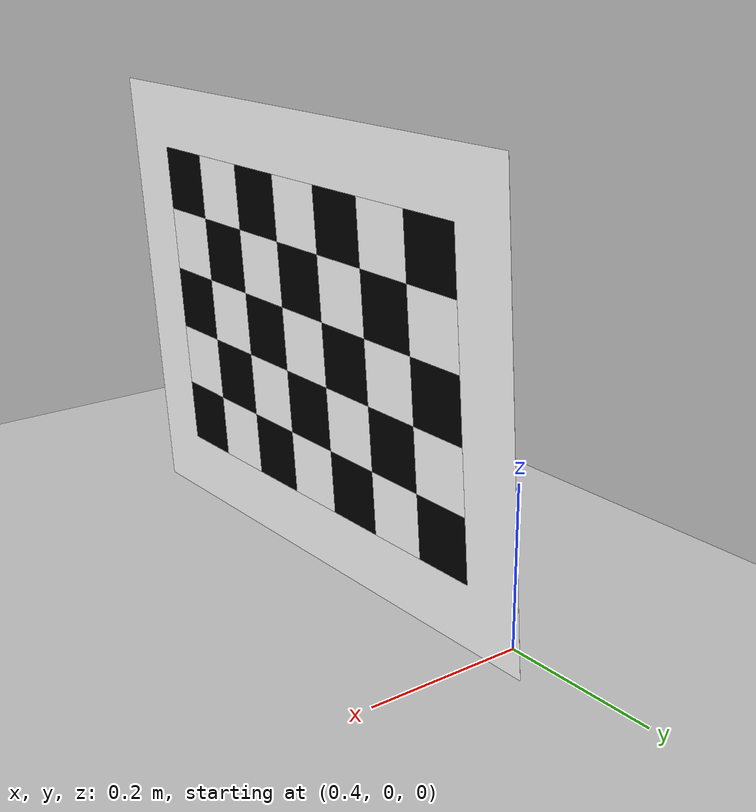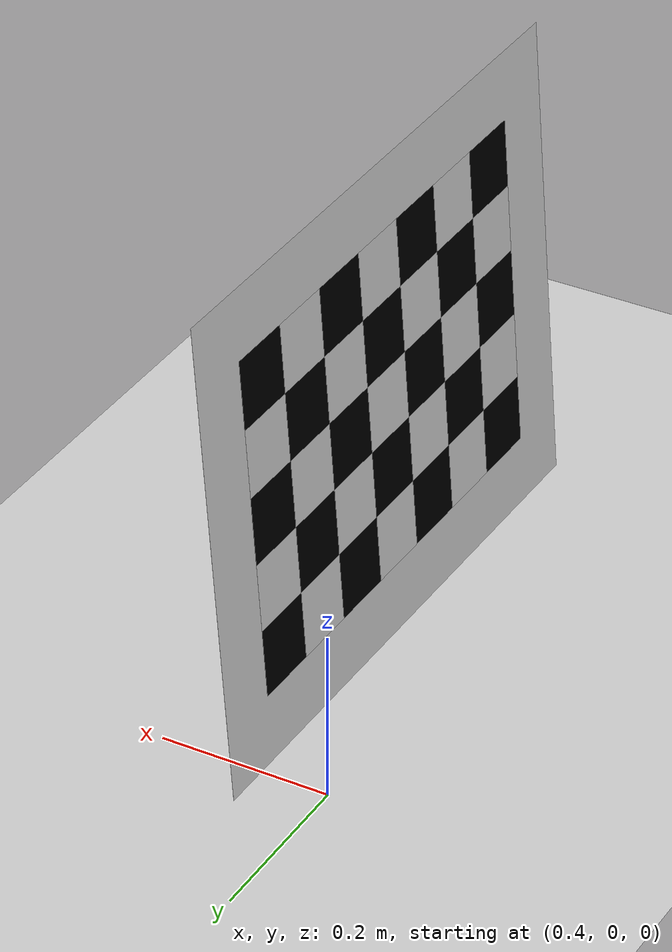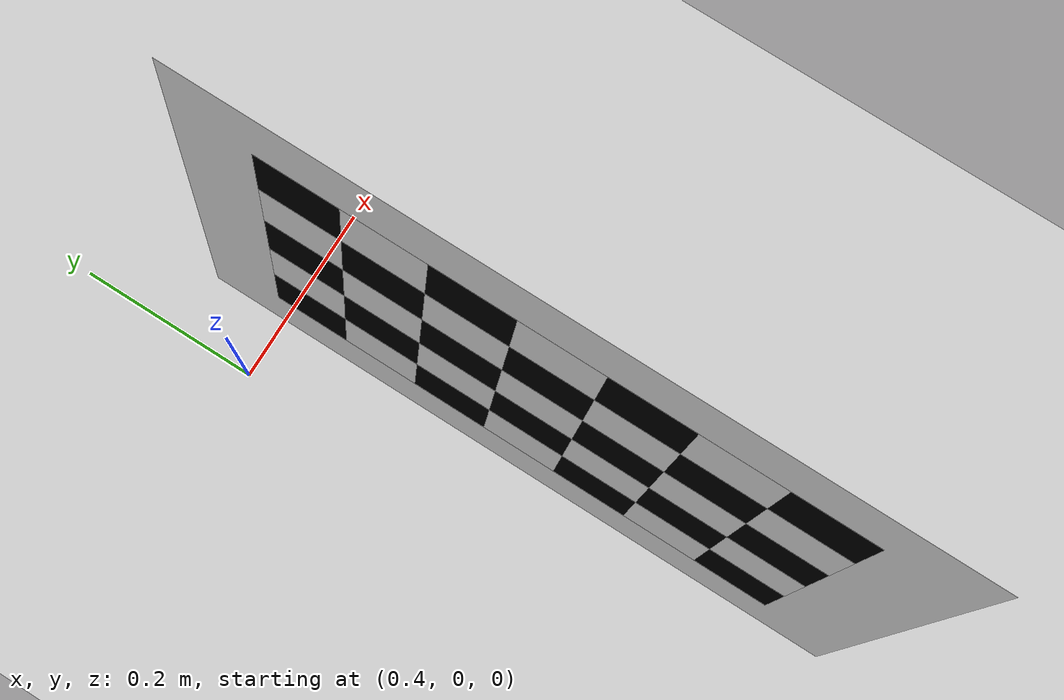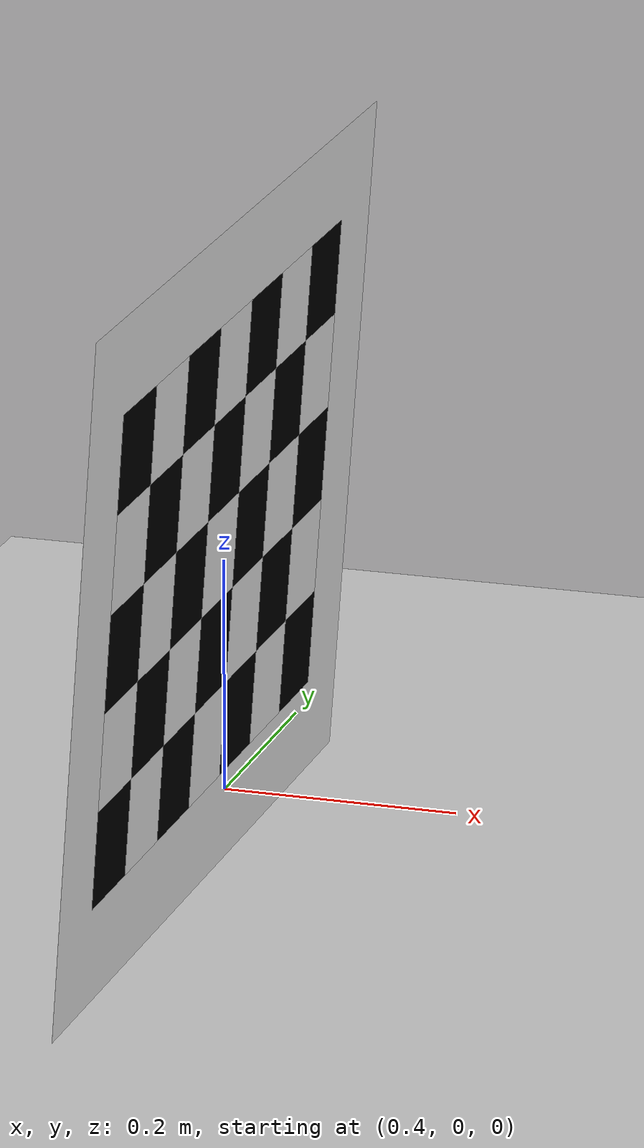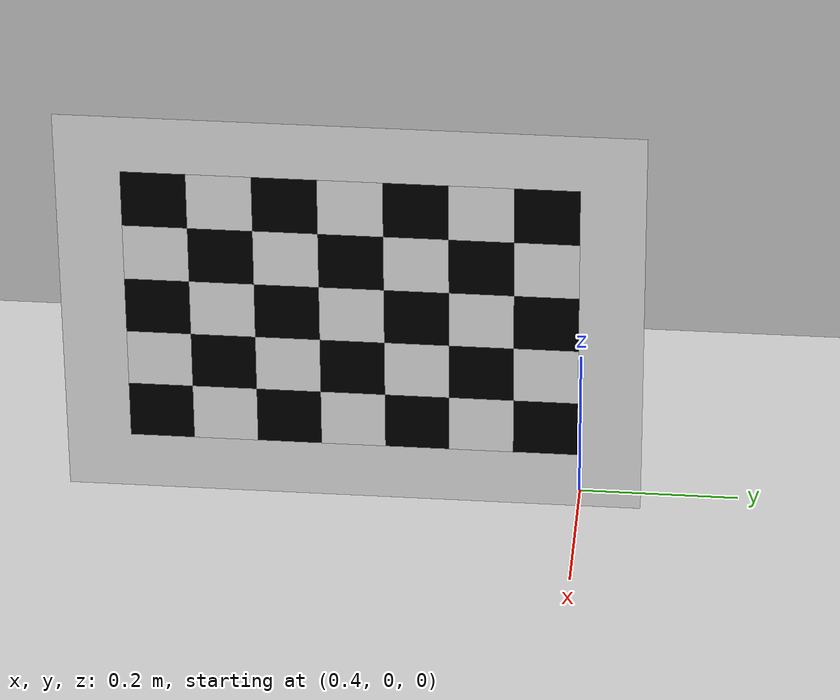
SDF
<?xml version="1.0" ?>
<sdf version="1.4">
  <!-- We use a custom world for the rrbot so that the camera angle is launched correctly -->

  <world name="checkerboard_world">
    <include>
      <uri>model://ground_plane</uri>
    </include>

    <!-- Global light source -->
    <include>
      <uri>model://sun</uri>
    </include>

    <include>
      <uri>model://checkerboard_5_7_0_08</uri>
      <pose>0.5 0 0.5 0.0 1.5 3.14</pose>
    </include>

  </world>
</sdf>

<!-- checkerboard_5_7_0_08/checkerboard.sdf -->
<sdf version="1.4">
  <model name="checkerboard_5_7_0_08">
  <static>true</static>
  <link name="checkerboard_5_7_0_08_body">
      <visual name="checker_0_0">
        <pose>0.04 0.04 0 0 0 0</pose>
        <geometry>
          <box>
            <size>0.08 0.08 0.0002</size>
          </box>
        </geometry>
        <material>
          <ambient>0 0 0 1</ambient>
          <diffuse>0 0 0 1</diffuse>
          <specular>0 0 0 1</specular>
          <emissive>0 0 0 1</emissive>
        </material>
      </visual>
      <visual name="checker_0_1">
        <pose>0.12 0.04 0 0 0 0</pose>
        <geometry>
          <box>
            <size>0.08 0.08 0.0002</size>
          </box>
        </geometry>
        <material>
          <ambient>1 1 1 1</ambient>
          <diffuse>1 1 1 1</diffuse>
          <specular>1 1 1 1</specular>
          <emissive>1 1 1 1</emissive>
        </material>
      </visual>
      <visual name="checker_0_2">
        <pose>0.2 0.04 0 0 0 0</pose>
        <geometry>
          <box>
            <size>0.08 0.08 0.0002</size>
          </box>
        </geometry>
        <material>
          <ambient>0 0 0 1</ambient>
          <diffuse>0 0 0 1</diffuse>
          <specular>0 0 0 1</specular>
          <emissive>0 0 0 1</emissive>
        </material>
      </visual>
      <visual name="checker_0_3">
        <pose>0.28 0.04 0 0 0 0</pose>
        <geometry>
          <box>
            <size>0.08 0.08 0.0002</size>
          </box>
        </geometry>
        <material>
          <ambient>1 1 1 1</ambient>
          <diffuse>1 1 1 1</diffuse>
          <specular>1 1 1 1</specular>
          <emissive>1 1 1 1</emissive>
        </material>
      </visual>
      <visual name="checker_0_4">
        <pose>0.36 0.04 0 0 0 0</pose>
        <geometry>
          <box>
            <size>0.08 0.08 0.0002</size>
          </box>
        </geometry>
        <material>
          <ambient>0 0 0 1</ambient>
          <diffuse>0 0 0 1</diffuse>
          <specular>0 0 0 1</specular>
          <emissive>0 0 0 1</emissive>
        </material>
      </visual>
      <visual name="checker_1_0">
        <pose>0.04 0.12 0 0 0 0</pose>
        <geometry>
          <box>
            <size>0.08 0.08 0.0002</size>
          </box>
        </geometry>
        <material>
          <ambient>1 1 1 1</ambient>
          <diffuse>1 1 1 1</diffuse>
          <specular>1 1 1 1</specular>
          <emissive>1 1 1 1</emissive>
        </material>
      </visual>
      <visual name="checker_1_1">
        <pose>0.12 0.12 0 0 0 0</pose>
        <geometry>
          <box>
            <size>0.08 0.08 0.0002</size>
          </box>
        </geometry>
        <material>
          <ambient>0 0 0 1</ambient>
          <diffuse>0 0 0 1</diffuse>
          <specular>0 0 0 1</specular>
          <emissive>0 0 0 1</emissive>
        </material>
      </visual>
      <visual name="checker_1_2">
        <pose>0.2 0.12 0 0 0 0</pose>
        <geometry>
          <box>
            <size>0.08 0.08 0.0002</size>
          </box>
        </geometry>
        <material>
          <ambient>1 1 1 1</ambient>
          <diffuse>1 1 1 1</diffuse>
          <specular>1 1 1 1</specular>
          <emissive>1 1 1 1</emissive>
        </material>
      </visual>
      <visual name="checker_1_3">
        <pose>0.28 0.12 0 0 0 0</pose>
        <geometry>
          <box>
            <size>0.08 0.08 0.0002</size>
          </box>
        </geometry>
        <material>
          <ambient>0 0 0 1</ambient>
          <diffuse>0 0 0 1</diffuse>
          <specular>0 0 0 1</specular>
          <emissive>0 0 0 1</emissive>
        </material>
      </visual>
      <visual name="checker_1_4">
        <pose>0.36 0.12 0 0 0 0</pose>
        <geometry>
          <box>
            <size>0.08 0.08 0.0002</size>
          </box>
        </geometry>
        <material>
          <ambient>1 1 1 1</ambient>
          <diffuse>1 1 1 1</diffuse>
          <specular>1 1 1 1</specular>
          <emissive>1 1 1 1</emissive>
        </material>
      </visual>
      <visual name="checker_2_0">
        <pose>0.04 0.2 0 0 0 0</pose>
        <geometry>
          <box>
            <size>0.08 0.08 0.0002</size>
          </box>
        </geometry>
        <material>
          <ambient>0 0 0 1</ambient>
          <diffuse>0 0 0 1</diffuse>
          <specular>0 0 0 1</specular>
          <emissive>0 0 0 1</emissive>
        </material>
      </visual>
      <visual name="checker_2_1">
        <pose>0.12 0.2 0 0 0 0</pose>
        <geometry>
          <box>
            <size>0.08 0.08 0.0002</size>
          </box>
        </geometry>
        <material>
          <ambient>1 1 1 1</ambient>
          <diffuse>1 1 1 1</diffuse>
          <specular>1 1 1 1</specular>
          <emissive>1 1 1 1</emissive>
        </material>
      </visual>
      <visual name="checker_2_2">
        <pose>0.2 0.2 0 0 0 0</pose>
        <geometry>
          <box>
            <size>0.08 0.08 0.0002</size>
          </box>
        </geometry>
        <material>
          <ambient>0 0 0 1</ambient>
          <diffuse>0 0 0 1</diffuse>
          <specular>0 0 0 1</specular>
          <emissive>0 0 0 1</emissive>
        </material>
      </visual>
      <visual name="checker_2_3">
        <pose>0.28 0.2 0 0 0 0</pose>
        <geometry>
          <box>
            <size>0.08 0.08 0.0002</size>
          </box>
        </geometry>
        <material>
          <ambient>1 1 1 1</ambient>
          <diffuse>1 1 1 1</diffuse>
          <specular>1 1 1 1</specular>
          <emissive>1 1 1 1</emissive>
        </material>
      </visual>
      <visual name="checker_2_4">
        <pose>0.36 0.2 0 0 0 0</pose>
        <geometry>
          <box>
            <size>0.08 0.08 0.0002</size>
          </box>
        </geometry>
        <material>
          <ambient>0 0 0 1</ambient>
          <diffuse>0 0 0 1</diffuse>
          <specular>0 0 0 1</specular>
          <emissive>0 0 0 1</emissive>
        </material>
      </visual>
      <visual name="checker_3_0">
        <pose>0.04 0.28 0 0 0 0</pose>
        <geometry>
          <box>
            <size>0.08 0.08 0.0002</size>
          </box>
        </geometry>
        <material>
          <ambient>1 1 1 1</ambient>
          <diffuse>1 1 1 1</diffuse>
          <specular>1 1 1 1</specular>
          <emissive>1 1 1 1</emissive>
        </material>
      </visual>
      <visual name="checker_3_1">
        <pose>0.12 0.28 0 0 0 0</pose>
        <geometry>
          <box>
            <size>0.08 0.08 0.0002</size>
          </box>
        </geometry>
        <material>
          <ambient>0 0 0 1</ambient>
          <diffuse>0 0 0 1</diffuse>
          <specular>0 0 0 1</specular>
          <emissive>0 0 0 1</emissive>
        </material>
      </visual>
      <visual name="checker_3_2">
        <pose>0.2 0.28 0 0 0 0</pose>
        <geometry>
          <box>
            <size>0.08 0.08 0.0002</size>
          </box>
        </geometry>
        <material>
          <ambient>1 1 1 1</ambient>
          <diffuse>1 1 1 1</diffuse>
          <specular>1 1 1 1</specular>
          <emissive>1 1 1 1</emissive>
        </material>
      </visual>
      <visual name="checker_3_3">
        <pose>0.28 0.28 0 0 0 0</pose>
        <geometry>
          <box>
            <size>0.08 0.08 0.0002</size>
          </box>
        </geometry>
        <material>
          <ambient>0 0 0 1</ambient>
          <diffuse>0 0 0 1</diffuse>
          <specular>0 0 0 1</specular>
          <emissive>0 0 0 1</emissive>
        </material>
      </visual>
      <visual name="checker_3_4">
        <pose>0.36 0.28 0 0 0 0</pose>
        <geometry>
          <box>
            <size>0.08 0.08 0.0002</size>
          </box>
        </geometry>
        <material>
          <ambient>1 1 1 1</ambient>
          <diffuse>1 1 1 1</diffuse>
          <specular>1 1 1 1</specular>
          <emissive>1 1 1 1</emissive>
        </material>
      </visual>
      <visual name="checker_4_0">
        <pose>0.04 0.36 0 0 0 0</pose>
        <geometry>
          <box>
            <size>0.08 0.08 0.0002</size>
          </box>
        </geometry>
        <material>
          <ambient>0 0 0 1</ambient>
          <diffuse>0 0 0 1</diffuse>
          <specular>0 0 0 1</specular>
          <emissive>0 0 0 1</emissive>
        </material>
      </visual>
      <visual name="checker_4_1">
        <pose>0.12 0.36 0 0 0 0</pose>
        <geometry>
          <box>
            <size>0.08 0.08 0.0002</size>
          </box>
        </geometry>
        <material>
          <ambient>1 1 1 1</ambient>
          <diffuse>1 1 1 1</diffuse>
          <specular>1 1 1 1</specular>
          <emissive>1 1 1 1</emissive>
        </material>
      </visual>
      <visual name="checker_4_2">
        <pose>0.2 0.36 0 0 0 0</pose>
        <geometry>
          <box>
            <size>0.08 0.08 0.0002</size>
          </box>
        </geometry>
        <material>
          <ambient>0 0 0 1</ambient>
          <diffuse>0 0 0 1</diffuse>
          <specular>0 0 0 1</specular>
          <emissive>0 0 0 1</emissive>
        </material>
      </visual>
      <visual name="checker_4_3">
        <pose>0.28 0.36 0 0 0 0</pose>
        <geometry>
          <box>
            <size>0.08 0.08 0.0002</size>
          </box>
        </geometry>
        <material>
          <ambient>1 1 1 1</ambient>
          <diffuse>1 1 1 1</diffuse>
          <specular>1 1 1 1</specular>
          <emissive>1 1 1 1</emissive>
        </material>
      </visual>
      <visual name="checker_4_4">
        <pose>0.36 0.36 0 0 0 0</pose>
        <geometry>
          <box>
            <size>0.08 0.08 0.0002</size>
          </box>
        </geometry>
        <material>
          <ambient>0 0 0 1</ambient>
          <diffuse>0 0 0 1</diffuse>
          <specular>0 0 0 1</specular>
          <emissive>0 0 0 1</emissive>
        </material>
      </visual>
      <visual name="checker_5_0">
        <pose>0.04 0.44 0 0 0 0</pose>
        <geometry>
          <box>
            <size>0.08 0.08 0.0002</size>
          </box>
        </geometry>
        <material>
          <ambient>1 1 1 1</ambient>
          <diffuse>1 1 1 1</diffuse>
          <specular>1 1 1 1</specular>
          <emissive>1 1 1 1</emissive>
        </material>
      </visual>
      <visual name="checker_5_1">
        <pose>0.12 0.44 0 0 0 0</pose>
        <geometry>
          <box>
            <size>0.08 0.08 0.0002</size>
          </box>
        </geometry>
        <material>
          <ambient>0 0 0 1</ambient>
          <diffuse>0 0 0 1</diffuse>
          <specular>0 0 0 1</specular>
          <emissive>0 0 0 1</emissive>
        </material>
      </visual>
      <visual name="checker_5_2">
        <pose>0.2 0.44 0 0 0 0</pose>
        <geometry>
          <box>
            <size>0.08 0.08 0.0002</size>
          </box>
        </geometry>
        <material>
          <ambient>1 1 1 1</ambient>
          <diffuse>1 1 1 1</diffuse>
          <specular>1 1 1 1</specular>
          <emissive>1 1 1 1</emissive>
        </material>
      </visual>
      <visual name="checker_5_3">
        <pose>0.28 0.44 0 0 0 0</pose>
        <geometry>
          <box>
            <size>0.08 0.08 0.0002</size>
          </box>
        </geometry>
        <material>
          <ambient>0 0 0 1</ambient>
          <diffuse>0 0 0 1</diffuse>
          <specular>0 0 0 1</specular>
          <emissive>0 0 0 1</emissive>
        </material>
      </visual>
      <visual name="checker_5_4">
        <pose>0.36 0.44 0 0 0 0</pose>
        <geometry>
          <box>
            <size>0.08 0.08 0.0002</size>
          </box>
        </geometry>
        <material>
          <ambient>1 1 1 1</ambient>
          <diffuse>1 1 1 1</diffuse>
          <specular>1 1 1 1</specular>
          <emissive>1 1 1 1</emissive>
        </material>
      </visual>
      <visual name="checker_6_0">
        <pose>0.04 0.52 0 0 0 0</pose>
        <geometry>
          <box>
            <size>0.08 0.08 0.0002</size>
          </box>
        </geometry>
        <material>
          <ambient>0 0 0 1</ambient>
          <diffuse>0 0 0 1</diffuse>
          <specular>0 0 0 1</specular>
          <emissive>0 0 0 1</emissive>
        </material>
      </visual>
      <visual name="checker_6_1">
        <pose>0.12 0.52 0 0 0 0</pose>
        <geometry>
          <box>
            <size>0.08 0.08 0.0002</size>
          </box>
        </geometry>
        <material>
          <ambient>1 1 1 1</ambient>
          <diffuse>1 1 1 1</diffuse>
          <specular>1 1 1 1</specular>
          <emissive>1 1 1 1</emissive>
        </material>
      </visual>
      <visual name="checker_6_2">
        <pose>0.2 0.52 0 0 0 0</pose>
        <geometry>
          <box>
            <size>0.08 0.08 0.0002</size>
          </box>
        </geometry>
        <material>
          <ambient>0 0 0 1</ambient>
          <diffuse>0 0 0 1</diffuse>
          <specular>0 0 0 1</specular>
          <emissive>0 0 0 1</emissive>
        </material>
      </visual>
      <visual name="checker_6_3">
        <pose>0.28 0.52 0 0 0 0</pose>
        <geometry>
          <box>
            <size>0.08 0.08 0.0002</size>
          </box>
        </geometry>
        <material>
          <ambient>1 1 1 1</ambient>
          <diffuse>1 1 1 1</diffuse>
          <specular>1 1 1 1</specular>
          <emissive>1 1 1 1</emissive>
        </material>
      </visual>
      <visual name="checker_6_4">
        <pose>0.36 0.52 0 0 0 0</pose>
        <geometry>
          <box>
            <size>0.08 0.08 0.0002</size>
          </box>
        </geometry>
        <material>
          <ambient>0 0 0 1</ambient>
          <diffuse>0 0 0 1</diffuse>
          <specular>0 0 0 1</specular>
          <emissive>0 0 0 1</emissive>
        </material>
      </visual>
      <visual name="checker_backdrop">
        <pose>0.2 0.28 0 0 0 0</pose>
        <geometry>
          <box>
            <size>0.56 0.72 0.0001</size>
          </box>
        </geometry>
        <material>
          <ambient>1 1 1 1</ambient>
          <diffuse>1 1 1 1</diffuse>
          <specular>1 1 1 1</specular>
          <emissive>1 1 1 1</emissive>
        </material>
      </visual>
    </link>
  </model>
</sdf>
